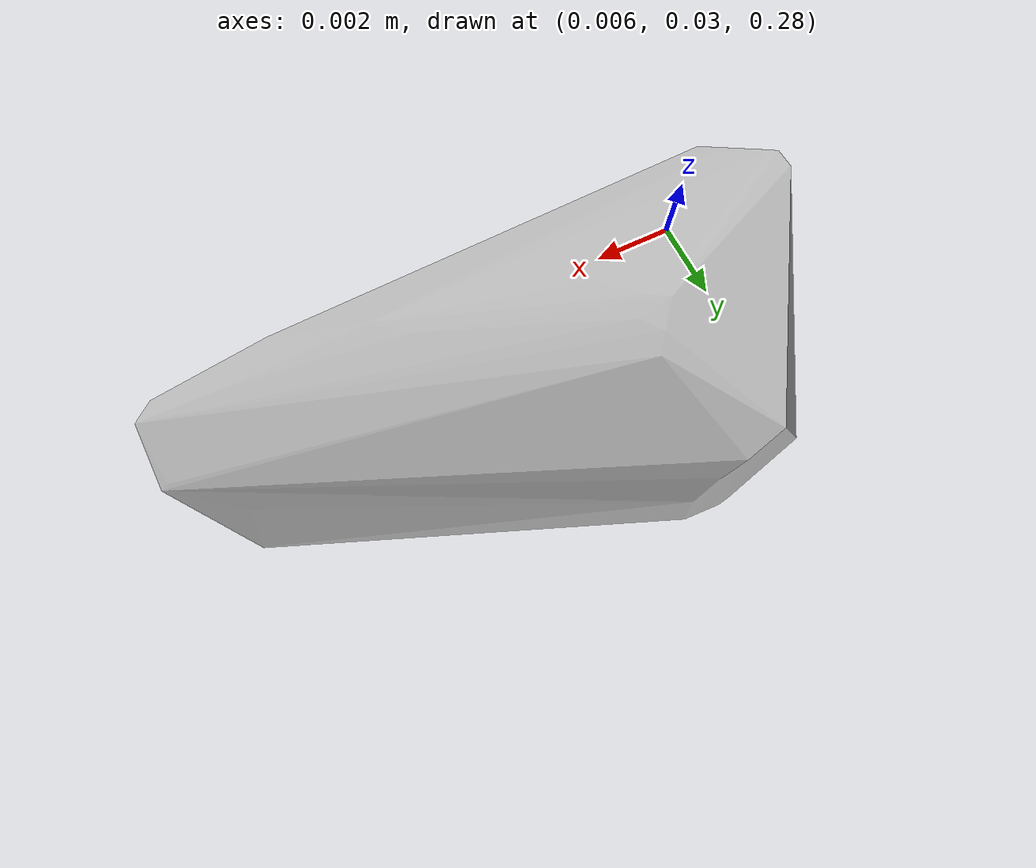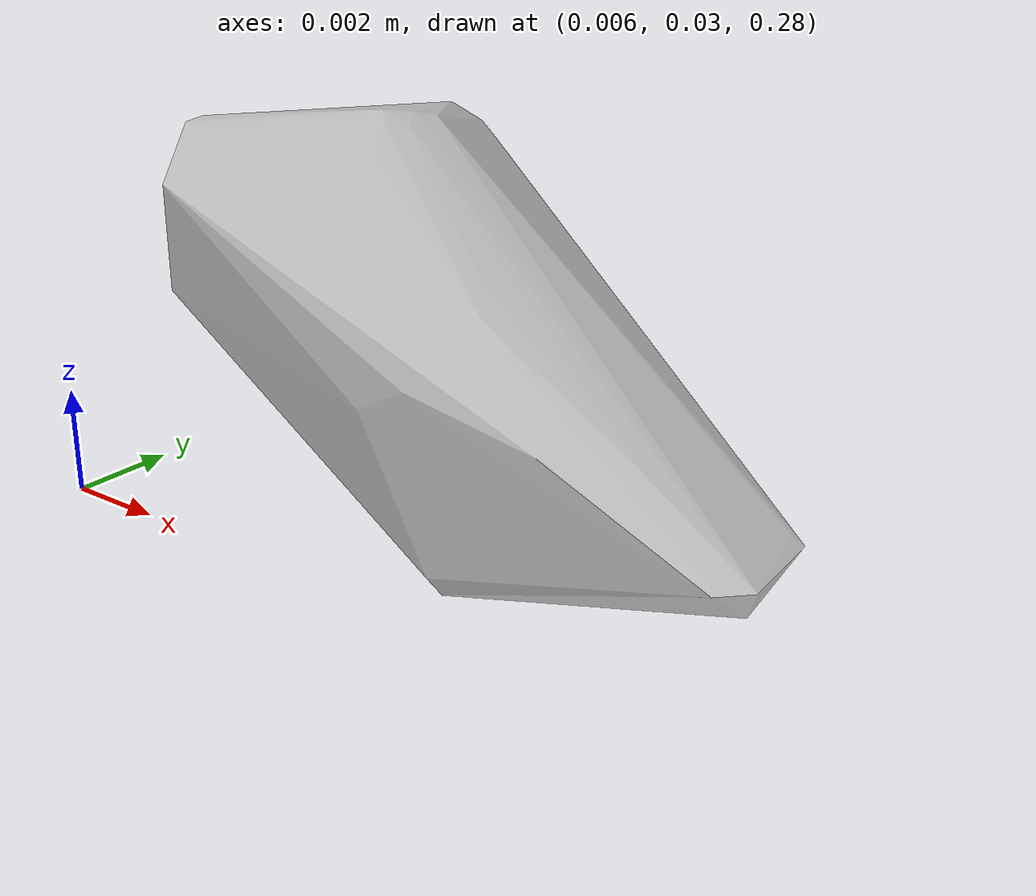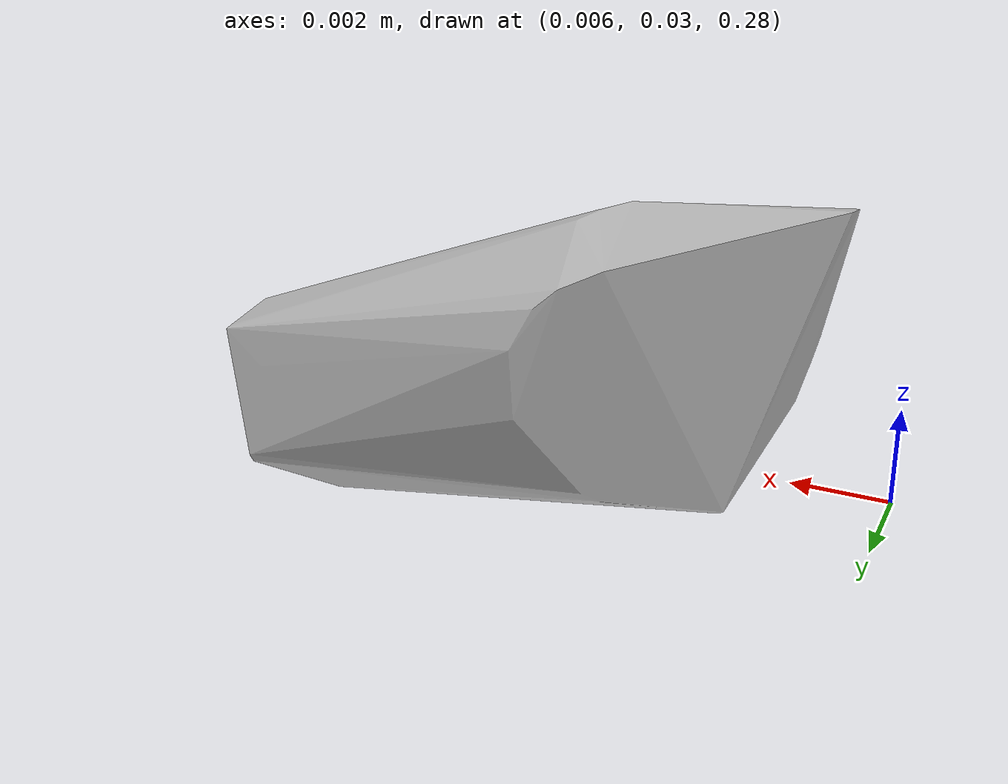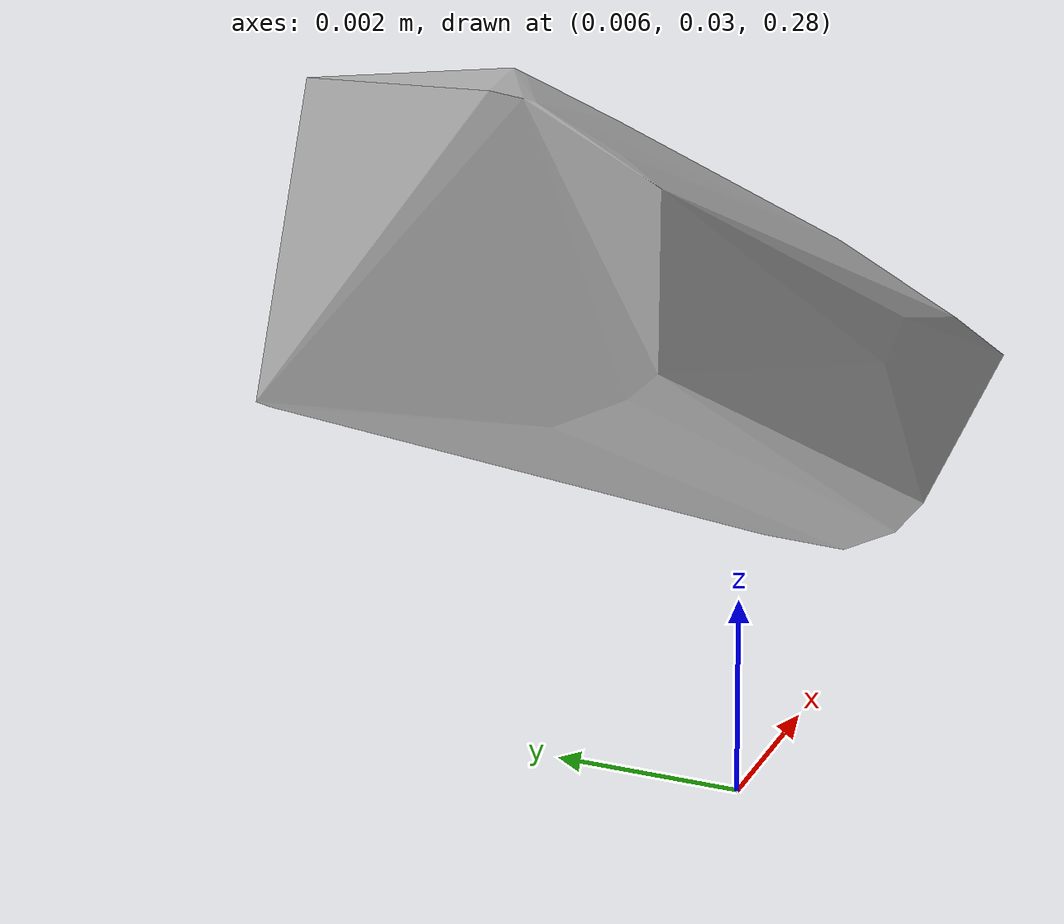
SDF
<?xml version="1.0"?>
<sdf version="1.7">
  <model name="vascular_partexport034">
    <link name="vascular_partexport034_body">
      <visual name="vascular_partexport034_visual">
        <geometry>
          <mesh>
            <uri>vascular_partexport034.obj</uri>
          </mesh>
        </geometry>
      </visual>
      <collision name="vascular_partexport034_collision">
        <geometry>
          <mesh>
            <uri>vascular_partexport034.obj</uri>
          </mesh>
        </geometry>
      </collision>
    </link>
    <frame name="vascular_partexport034_center">
      <pose relative_to="vascular_partexport034_body">0 0 0 0 0 0</pose>
    </frame>
  </model>
</sdf>
